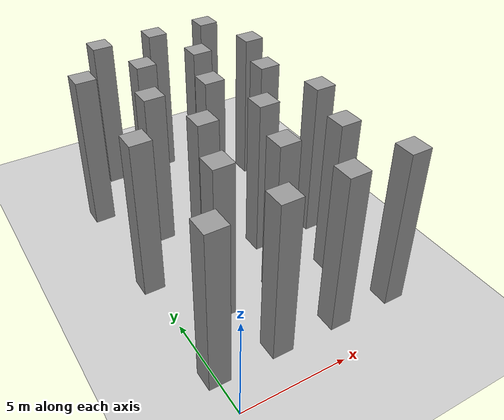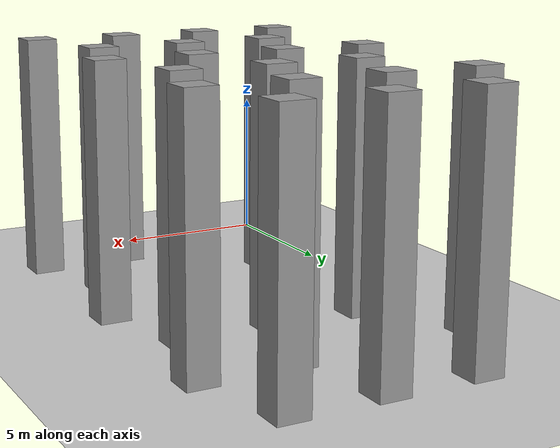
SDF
<sdf version="1.7">
 <world name="default">
  <model name="ground_plane">
   <static>1</static>
   <link name="link">
    <collision name="collision">
     <geometry><plane><normal>0 0 1</normal><size>100 100</size></plane></geometry>
     <surface>
      <contact><collide_bitmask>65535</collide_bitmask></contact>
      <friction><ode><mu>100</mu><mu2>50</mu2></ode></friction>
     </surface>
    </collision>
    <visual name="visual">
     <cast_shadows>0</cast_shadows>
     <geometry><plane><normal>0 0 1</normal><size>100 100</size></plane></geometry>
     <material>
      <script><uri>file://media/materials/scripts/gazebo.material</uri><name>Gazebo/Grey</name></script>
     </material>
    </visual>
   </link>
  </model>
  <model name="unit_box_static94">
   <link name="link">
    <inertial>
     <mass>1</mass>
     <inertia>
      <ixx>0.166667</ixx>
      <ixy>0</ixy>
      <ixz>0</ixz>
      <iyy>0.166667</iyy>
      <iyz>0</iyz>
      <izz>0.166667</izz>
     </inertia>
    </inertial>
    <visual name="visual">
     <geometry><box><size>1 1 8</size></box></geometry>
     <material>
      <script><name>Gazebo/Grey</name><uri>file://media/materials/scripts/gazebo.material</uri></script>
      <shader type="pixel"/>
     </material>
    </visual>
    <collision name="collision">
     <geometry><box><size>1 1 8</size></box></geometry>
     <surface>
      <friction>
       <ode><mu>1</mu><mu2>1</mu2><fdir1>0 0 0</fdir1><slip1>0</slip1><slip2>0</slip2></ode>
       <torsional>
        <coefficient>1</coefficient>
        <patch_radius>0</patch_radius>
        <surface_radius>0</surface_radius>
        <use_patch_radius>1</use_patch_radius>
        <ode><slip>0</slip></ode>
       </torsional>
      </friction>
      <bounce><restitution_coefficient>0</restitution_coefficient><threshold>1e+06</threshold></bounce>
      <contact>
       <collide_without_contact>0</collide_without_contact>
       <collide_without_contact_bitmask>1</collide_without_contact_bitmask>
       <collide_bitmask>1</collide_bitmask>
       <ode>
        <soft_cfm>0</soft_cfm>
        <soft_erp>0.2</soft_erp>
        <kp>1e+13</kp>
        <kd>1</kd>
        <max_vel>0.01</max_vel>
        <min_depth>0</min_depth>
       </ode>
       <bullet>
        <split_impulse>1</split_impulse>
        <split_impulse_penetration_threshold>-0.01</split_impulse_penetration_threshold>
        <soft_cfm>0</soft_cfm>
        <soft_erp>0.2</soft_erp>
        <kp>1e+13</kp>
        <kd>1</kd>
       </bullet>
      </contact>
     </surface>
    </collision>
   </link>
   <static>1</static>
   <pose>0 2 4 0 -0 0</pose>
  </model>
  <model name="unit_box_static95">
   <link name="link">
    <inertial>
     <mass>1</mass>
     <inertia>
      <ixx>0.166667</ixx>
      <ixy>0</ixy>
      <ixz>0</ixz>
      <iyy>0.166667</iyy>
      <iyz>0</iyz>
      <izz>0.166667</izz>
     </inertia>
    </inertial>
    <visual name="visual">
     <geometry><box><size>1 1 8</size></box></geometry>
     <material>
      <script><name>Gazebo/Grey</name><uri>file://media/materials/scripts/gazebo.material</uri></script>
      <shader type="pixel"/>
     </material>
    </visual>
    <collision name="collision">
     <geometry><box><size>1 1 8</size></box></geometry>
     <surface>
      <friction>
       <ode><mu>1</mu><mu2>1</mu2><fdir1>0 0 0</fdir1><slip1>0</slip1><slip2>0</slip2></ode>
       <torsional>
        <coefficient>1</coefficient>
        <patch_radius>0</patch_radius>
        <surface_radius>0</surface_radius>
        <use_patch_radius>1</use_patch_radius>
        <ode><slip>0</slip></ode>
       </torsional>
      </friction>
      <bounce><restitution_coefficient>0</restitution_coefficient><threshold>1e+06</threshold></bounce>
      <contact>
       <collide_without_contact>0</collide_without_contact>
       <collide_without_contact_bitmask>1</collide_without_contact_bitmask>
       <collide_bitmask>1</collide_bitmask>
       <ode>
        <soft_cfm>0</soft_cfm>
        <soft_erp>0.2</soft_erp>
        <kp>1e+13</kp>
        <kd>1</kd>
        <max_vel>0.01</max_vel>
        <min_depth>0</min_depth>
       </ode>
       <bullet>
        <split_impulse>1</split_impulse>
        <split_impulse_penetration_threshold>-0.01</split_impulse_penetration_threshold>
        <soft_cfm>0</soft_cfm>
        <soft_erp>0.2</soft_erp>
        <kp>1e+13</kp>
        <kd>1</kd>
       </bullet>
      </contact>
     </surface>
    </collision>
   </link>
   <static>1</static>
   <pose>3 2 4 0 -0 0</pose>
  </model>
  <model name="unit_box_static96">
   <link name="link">
    <inertial>
     <mass>1</mass>
     <inertia>
      <ixx>0.166667</ixx>
      <ixy>0</ixy>
      <ixz>0</ixz>
      <iyy>0.166667</iyy>
      <iyz>0</iyz>
      <izz>0.166667</izz>
     </inertia>
    </inertial>
    <visual name="visual">
     <geometry><box><size>1 1 8</size></box></geometry>
     <material>
      <script><name>Gazebo/Grey</name><uri>file://media/materials/scripts/gazebo.material</uri></script>
      <shader type="pixel"/>
     </material>
    </visual>
    <collision name="collision">
     <geometry><box><size>1 1 8</size></box></geometry>
     <surface>
      <friction>
       <ode><mu>1</mu><mu2>1</mu2><fdir1>0 0 0</fdir1><slip1>0</slip1><slip2>0</slip2></ode>
       <torsional>
        <coefficient>1</coefficient>
        <patch_radius>0</patch_radius>
        <surface_radius>0</surface_radius>
        <use_patch_radius>1</use_patch_radius>
        <ode><slip>0</slip></ode>
       </torsional>
      </friction>
      <bounce><restitution_coefficient>0</restitution_coefficient><threshold>1e+06</threshold></bounce>
      <contact>
       <collide_without_contact>0</collide_without_contact>
       <collide_without_contact_bitmask>1</collide_without_contact_bitmask>
       <collide_bitmask>1</collide_bitmask>
       <ode>
        <soft_cfm>0</soft_cfm>
        <soft_erp>0.2</soft_erp>
        <kp>1e+13</kp>
        <kd>1</kd>
        <max_vel>0.01</max_vel>
        <min_depth>0</min_depth>
       </ode>
       <bullet>
        <split_impulse>1</split_impulse>
        <split_impulse_penetration_threshold>-0.01</split_impulse_penetration_threshold>
        <soft_cfm>0</soft_cfm>
        <soft_erp>0.2</soft_erp>
        <kp>1e+13</kp>
        <kd>1</kd>
       </bullet>
      </contact>
     </surface>
    </collision>
   </link>
   <static>1</static>
   <pose>6 2 4 0 -0 0</pose>
  </model>
  <model name="unit_box_static97">
   <link name="link">
    <inertial>
     <mass>1</mass>
     <inertia>
      <ixx>0.166667</ixx>
      <ixy>0</ixy>
      <ixz>0</ixz>
      <iyy>0.166667</iyy>
      <iyz>0</iyz>
      <izz>0.166667</izz>
     </inertia>
    </inertial>
    <visual name="visual">
     <geometry><box><size>1 1 8</size></box></geometry>
     <material>
      <script><name>Gazebo/Grey</name><uri>file://media/materials/scripts/gazebo.material</uri></script>
      <shader type="pixel"/>
     </material>
    </visual>
    <collision name="collision">
     <geometry><box><size>1 1 8</size></box></geometry>
     <surface>
      <friction>
       <ode><mu>1</mu><mu2>1</mu2><fdir1>0 0 0</fdir1><slip1>0</slip1><slip2>0</slip2></ode>
       <torsional>
        <coefficient>1</coefficient>
        <patch_radius>0</patch_radius>
        <surface_radius>0</surface_radius>
        <use_patch_radius>1</use_patch_radius>
        <ode><slip>0</slip></ode>
       </torsional>
      </friction>
      <bounce><restitution_coefficient>0</restitution_coefficient><threshold>1e+06</threshold></bounce>
      <contact>
       <collide_without_contact>0</collide_without_contact>
       <collide_without_contact_bitmask>1</collide_without_contact_bitmask>
       <collide_bitmask>1</collide_bitmask>
       <ode>
        <soft_cfm>0</soft_cfm>
        <soft_erp>0.2</soft_erp>
        <kp>1e+13</kp>
        <kd>1</kd>
        <max_vel>0.01</max_vel>
        <min_depth>0</min_depth>
       </ode>
       <bullet>
        <split_impulse>1</split_impulse>
        <split_impulse_penetration_threshold>-0.01</split_impulse_penetration_threshold>
        <soft_cfm>0</soft_cfm>
        <soft_erp>0.2</soft_erp>
        <kp>1e+13</kp>
        <kd>1</kd>
       </bullet>
      </contact>
     </surface>
    </collision>
   </link>
   <static>1</static>
   <pose>9 2 4 0 -0 0</pose>
  </model>
  <model name="unit_box_static107">
   <link name="link">
    <inertial>
     <mass>1</mass>
     <inertia>
      <ixx>0.166667</ixx>
      <ixy>0</ixy>
      <ixz>0</ixz>
      <iyy>0.166667</iyy>
      <iyz>0</iyz>
      <izz>0.166667</izz>
     </inertia>
    </inertial>
    <visual name="visual">
     <geometry><box><size>1 1 8</size></box></geometry>
     <material>
      <script><name>Gazebo/Grey</name><uri>file://media/materials/scripts/gazebo.material</uri></script>
      <shader type="pixel"/>
     </material>
    </visual>
    <collision name="collision">
     <geometry><box><size>1 1 8</size></box></geometry>
     <surface>
      <friction>
       <ode><mu>1</mu><mu2>1</mu2><fdir1>0 0 0</fdir1><slip1>0</slip1><slip2>0</slip2></ode>
       <torsional>
        <coefficient>1</coefficient>
        <patch_radius>0</patch_radius>
        <surface_radius>0</surface_radius>
        <use_patch_radius>1</use_patch_radius>
        <ode><slip>0</slip></ode>
       </torsional>
      </friction>
      <bounce><restitution_coefficient>0</restitution_coefficient><threshold>1e+06</threshold></bounce>
      <contact>
       <collide_without_contact>0</collide_without_contact>
       <collide_without_contact_bitmask>1</collide_without_contact_bitmask>
       <collide_bitmask>1</collide_bitmask>
       <ode>
        <soft_cfm>0</soft_cfm>
        <soft_erp>0.2</soft_erp>
        <kp>1e+13</kp>
        <kd>1</kd>
        <max_vel>0.01</max_vel>
        <min_depth>0</min_depth>
       </ode>
       <bullet>
        <split_impulse>1</split_impulse>
        <split_impulse_penetration_threshold>-0.01</split_impulse_penetration_threshold>
        <soft_cfm>0</soft_cfm>
        <soft_erp>0.2</soft_erp>
        <kp>1e+13</kp>
        <kd>1</kd>
       </bullet>
      </contact>
     </surface>
    </collision>
   </link>
   <static>1</static>
   <pose>2 5 4 0 -0 0</pose>
  </model>
  <model name="unit_box_static108">
   <link name="link">
    <inertial>
     <mass>1</mass>
     <inertia>
      <ixx>0.166667</ixx>
      <ixy>0</ixy>
      <ixz>0</ixz>
      <iyy>0.166667</iyy>
      <iyz>0</iyz>
      <izz>0.166667</izz>
     </inertia>
    </inertial>
    <visual name="visual">
     <geometry><box><size>1 1 8</size></box></geometry>
     <material>
      <script><name>Gazebo/Grey</name><uri>file://media/materials/scripts/gazebo.material</uri></script>
      <shader type="pixel"/>
     </material>
    </visual>
    <collision name="collision">
     <geometry><box><size>1 1 8</size></box></geometry>
     <surface>
      <friction>
       <ode><mu>1</mu><mu2>1</mu2><fdir1>0 0 0</fdir1><slip1>0</slip1><slip2>0</slip2></ode>
       <torsional>
        <coefficient>1</coefficient>
        <patch_radius>0</patch_radius>
        <surface_radius>0</surface_radius>
        <use_patch_radius>1</use_patch_radius>
        <ode><slip>0</slip></ode>
       </torsional>
      </friction>
      <bounce><restitution_coefficient>0</restitution_coefficient><threshold>1e+06</threshold></bounce>
      <contact>
       <collide_without_contact>0</collide_without_contact>
       <collide_without_contact_bitmask>1</collide_without_contact_bitmask>
       <collide_bitmask>1</collide_bitmask>
       <ode>
        <soft_cfm>0</soft_cfm>
        <soft_erp>0.2</soft_erp>
        <kp>1e+13</kp>
        <kd>1</kd>
        <max_vel>0.01</max_vel>
        <min_depth>0</min_depth>
       </ode>
       <bullet>
        <split_impulse>1</split_impulse>
        <split_impulse_penetration_threshold>-0.01</split_impulse_penetration_threshold>
        <soft_cfm>0</soft_cfm>
        <soft_erp>0.2</soft_erp>
        <kp>1e+13</kp>
        <kd>1</kd>
       </bullet>
      </contact>
     </surface>
    </collision>
   </link>
   <static>1</static>
   <pose>5 5 4 0 -0 0</pose>
  </model>
  <model name="unit_box_static109">
   <link name="link">
    <inertial>
     <mass>1</mass>
     <inertia>
      <ixx>0.166667</ixx>
      <ixy>0</ixy>
      <ixz>0</ixz>
      <iyy>0.166667</iyy>
      <iyz>0</iyz>
      <izz>0.166667</izz>
     </inertia>
    </inertial>
    <visual name="visual">
     <geometry><box><size>1 1 8</size></box></geometry>
     <material>
      <script><name>Gazebo/Grey</name><uri>file://media/materials/scripts/gazebo.material</uri></script>
      <shader type="pixel"/>
     </material>
    </visual>
    <collision name="collision">
     <geometry><box><size>1 1 8</size></box></geometry>
     <surface>
      <friction>
       <ode><mu>1</mu><mu2>1</mu2><fdir1>0 0 0</fdir1><slip1>0</slip1><slip2>0</slip2></ode>
       <torsional>
        <coefficient>1</coefficient>
        <patch_radius>0</patch_radius>
        <surface_radius>0</surface_radius>
        <use_patch_radius>1</use_patch_radius>
        <ode><slip>0</slip></ode>
       </torsional>
      </friction>
      <bounce><restitution_coefficient>0</restitution_coefficient><threshold>1e+06</threshold></bounce>
      <contact>
       <collide_without_contact>0</collide_without_contact>
       <collide_without_contact_bitmask>1</collide_without_contact_bitmask>
       <collide_bitmask>1</collide_bitmask>
       <ode>
        <soft_cfm>0</soft_cfm>
        <soft_erp>0.2</soft_erp>
        <kp>1e+13</kp>
        <kd>1</kd>
        <max_vel>0.01</max_vel>
        <min_depth>0</min_depth>
       </ode>
       <bullet>
        <split_impulse>1</split_impulse>
        <split_impulse_penetration_threshold>-0.01</split_impulse_penetration_threshold>
        <soft_cfm>0</soft_cfm>
        <soft_erp>0.2</soft_erp>
        <kp>1e+13</kp>
        <kd>1</kd>
       </bullet>
      </contact>
     </surface>
    </collision>
   </link>
   <static>1</static>
   <pose>8 5 4 0 -0 0</pose>
  </model>
  <model name="unit_box_static119">
   <link name="link">
    <inertial>
     <mass>1</mass>
     <inertia>
      <ixx>0.166667</ixx>
      <ixy>0</ixy>
      <ixz>0</ixz>
      <iyy>0.166667</iyy>
      <iyz>0</iyz>
      <izz>0.166667</izz>
     </inertia>
    </inertial>
    <visual name="visual">
     <geometry><box><size>1 1 8</size></box></geometry>
     <material>
      <script><name>Gazebo/Grey</name><uri>file://media/materials/scripts/gazebo.material</uri></script>
      <shader type="pixel"/>
     </material>
    </visual>
    <collision name="collision">
     <geometry><box><size>1 1 8</size></box></geometry>
     <surface>
      <friction>
       <ode><mu>1</mu><mu2>1</mu2><fdir1>0 0 0</fdir1><slip1>0</slip1><slip2>0</slip2></ode>
       <torsional>
        <coefficient>1</coefficient>
        <patch_radius>0</patch_radius>
        <surface_radius>0</surface_radius>
        <use_patch_radius>1</use_patch_radius>
        <ode><slip>0</slip></ode>
       </torsional>
      </friction>
      <bounce><restitution_coefficient>0</restitution_coefficient><threshold>1e+06</threshold></bounce>
      <contact>
       <collide_without_contact>0</collide_without_contact>
       <collide_without_contact_bitmask>1</collide_without_contact_bitmask>
       <collide_bitmask>1</collide_bitmask>
       <ode>
        <soft_cfm>0</soft_cfm>
        <soft_erp>0.2</soft_erp>
        <kp>1e+13</kp>
        <kd>1</kd>
        <max_vel>0.01</max_vel>
        <min_depth>0</min_depth>
       </ode>
       <bullet>
        <split_impulse>1</split_impulse>
        <split_impulse_penetration_threshold>-0.01</split_impulse_penetration_threshold>
        <soft_cfm>0</soft_cfm>
        <soft_erp>0.2</soft_erp>
        <kp>1e+13</kp>
        <kd>1</kd>
       </bullet>
      </contact>
     </surface>
    </collision>
   </link>
   <static>1</static>
   <pose>0 8 4 0 -0 0</pose>
  </model>
  <model name="unit_box_static120">
   <link name="link">
    <inertial>
     <mass>1</mass>
     <inertia>
      <ixx>0.166667</ixx>
      <ixy>0</ixy>
      <ixz>0</ixz>
      <iyy>0.166667</iyy>
      <iyz>0</iyz>
      <izz>0.166667</izz>
     </inertia>
    </inertial>
    <visual name="visual">
     <geometry><box><size>1 1 8</size></box></geometry>
     <material>
      <script><name>Gazebo/Grey</name><uri>file://media/materials/scripts/gazebo.material</uri></script>
      <shader type="pixel"/>
     </material>
    </visual>
    <collision name="collision">
     <geometry><box><size>1 1 8</size></box></geometry>
     <surface>
      <friction>
       <ode><mu>1</mu><mu2>1</mu2><fdir1>0 0 0</fdir1><slip1>0</slip1><slip2>0</slip2></ode>
       <torsional>
        <coefficient>1</coefficient>
        <patch_radius>0</patch_radius>
        <surface_radius>0</surface_radius>
        <use_patch_radius>1</use_patch_radius>
        <ode><slip>0</slip></ode>
       </torsional>
      </friction>
      <bounce><restitution_coefficient>0</restitution_coefficient><threshold>1e+06</threshold></bounce>
      <contact>
       <collide_without_contact>0</collide_without_contact>
       <collide_without_contact_bitmask>1</collide_without_contact_bitmask>
       <collide_bitmask>1</collide_bitmask>
       <ode>
        <soft_cfm>0</soft_cfm>
        <soft_erp>0.2</soft_erp>
        <kp>1e+13</kp>
        <kd>1</kd>
        <max_vel>0.01</max_vel>
        <min_depth>0</min_depth>
       </ode>
       <bullet>
        <split_impulse>1</split_impulse>
        <split_impulse_penetration_threshold>-0.01</split_impulse_penetration_threshold>
        <soft_cfm>0</soft_cfm>
        <soft_erp>0.2</soft_erp>
        <kp>1e+13</kp>
        <kd>1</kd>
       </bullet>
      </contact>
     </surface>
    </collision>
   </link>
   <static>1</static>
   <pose>3 8 4 0 -0 0</pose>
  </model>
  <model name="unit_box_static121">
   <link name="link">
    <inertial>
     <mass>1</mass>
     <inertia>
      <ixx>0.166667</ixx>
      <ixy>0</ixy>
      <ixz>0</ixz>
      <iyy>0.166667</iyy>
      <iyz>0</iyz>
      <izz>0.166667</izz>
     </inertia>
    </inertial>
    <visual name="visual">
     <geometry><box><size>1 1 8</size></box></geometry>
     <material>
      <script><name>Gazebo/Grey</name><uri>file://media/materials/scripts/gazebo.material</uri></script>
      <shader type="pixel"/>
     </material>
    </visual>
    <collision name="collision">
     <geometry><box><size>1 1 8</size></box></geometry>
     <surface>
      <friction>
       <ode><mu>1</mu><mu2>1</mu2><fdir1>0 0 0</fdir1><slip1>0</slip1><slip2>0</slip2></ode>
       <torsional>
        <coefficient>1</coefficient>
        <patch_radius>0</patch_radius>
        <surface_radius>0</surface_radius>
        <use_patch_radius>1</use_patch_radius>
        <ode><slip>0</slip></ode>
       </torsional>
      </friction>
      <bounce><restitution_coefficient>0</restitution_coefficient><threshold>1e+06</threshold></bounce>
      <contact>
       <collide_without_contact>0</collide_without_contact>
       <collide_without_contact_bitmask>1</collide_without_contact_bitmask>
       <collide_bitmask>1</collide_bitmask>
       <ode>
        <soft_cfm>0</soft_cfm>
        <soft_erp>0.2</soft_erp>
        <kp>1e+13</kp>
        <kd>1</kd>
        <max_vel>0.01</max_vel>
        <min_depth>0</min_depth>
       </ode>
       <bullet>
        <split_impulse>1</split_impulse>
        <split_impulse_penetration_threshold>-0.01</split_impulse_penetration_threshold>
        <soft_cfm>0</soft_cfm>
        <soft_erp>0.2</soft_erp>
        <kp>1e+13</kp>
        <kd>1</kd>
       </bullet>
      </contact>
     </surface>
    </collision>
   </link>
   <static>1</static>
   <pose>6 8 4 0 -0 0</pose>
  </model>
  <model name="unit_box_static122">
   <link name="link">
    <inertial>
     <mass>1</mass>
     <inertia>
      <ixx>0.166667</ixx>
      <ixy>0</ixy>
      <ixz>0</ixz>
      <iyy>0.166667</iyy>
      <iyz>0</iyz>
      <izz>0.166667</izz>
     </inertia>
    </inertial>
    <visual name="visual">
     <geometry><box><size>1 1 8</size></box></geometry>
     <material>
      <script><name>Gazebo/Grey</name><uri>file://media/materials/scripts/gazebo.material</uri></script>
      <shader type="pixel"/>
     </material>
    </visual>
    <collision name="collision">
     <geometry><box><size>1 1 8</size></box></geometry>
     <surface>
      <friction>
       <ode><mu>1</mu><mu2>1</mu2><fdir1>0 0 0</fdir1><slip1>0</slip1><slip2>0</slip2></ode>
       <torsional>
        <coefficient>1</coefficient>
        <patch_radius>0</patch_radius>
        <surface_radius>0</surface_radius>
        <use_patch_radius>1</use_patch_radius>
        <ode><slip>0</slip></ode>
       </torsional>
      </friction>
      <bounce><restitution_coefficient>0</restitution_coefficient><threshold>1e+06</threshold></bounce>
      <contact>
       <collide_without_contact>0</collide_without_contact>
       <collide_without_contact_bitmask>1</collide_without_contact_bitmask>
       <collide_bitmask>1</collide_bitmask>
       <ode>
        <soft_cfm>0</soft_cfm>
        <soft_erp>0.2</soft_erp>
        <kp>1e+13</kp>
        <kd>1</kd>
        <max_vel>0.01</max_vel>
        <min_depth>0</min_depth>
       </ode>
       <bullet>
        <split_impulse>1</split_impulse>
        <split_impulse_penetration_threshold>-0.01</split_impulse_penetration_threshold>
        <soft_cfm>0</soft_cfm>
        <soft_erp>0.2</soft_erp>
        <kp>1e+13</kp>
        <kd>1</kd>
       </bullet>
      </contact>
     </surface>
    </collision>
   </link>
   <static>1</static>
   <pose>9 8 4 0 -0 0</pose>
  </model>
  <model name="unit_box_static132">
   <link name="link">
    <inertial>
     <mass>1</mass>
     <inertia>
      <ixx>0.166667</ixx>
      <ixy>0</ixy>
      <ixz>0</ixz>
      <iyy>0.166667</iyy>
      <iyz>0</iyz>
      <izz>0.166667</izz>
     </inertia>
    </inertial>
    <visual name="visual">
     <geometry><box><size>1 1 8</size></box></geometry>
     <material>
      <script><name>Gazebo/Grey</name><uri>file://media/materials/scripts/gazebo.material</uri></script>
      <shader type="pixel"/>
     </material>
    </visual>
    <collision name="collision">
     <geometry><box><size>1 1 8</size></box></geometry>
     <surface>
      <friction>
       <ode><mu>1</mu><mu2>1</mu2><fdir1>0 0 0</fdir1><slip1>0</slip1><slip2>0</slip2></ode>
       <torsional>
        <coefficient>1</coefficient>
        <patch_radius>0</patch_radius>
        <surface_radius>0</surface_radius>
        <use_patch_radius>1</use_patch_radius>
        <ode><slip>0</slip></ode>
       </torsional>
      </friction>
      <bounce><restitution_coefficient>0</restitution_coefficient><threshold>1e+06</threshold></bounce>
      <contact>
       <collide_without_contact>0</collide_without_contact>
       <collide_without_contact_bitmask>1</collide_without_contact_bitmask>
       <collide_bitmask>1</collide_bitmask>
       <ode>
        <soft_cfm>0</soft_cfm>
        <soft_erp>0.2</soft_erp>
        <kp>1e+13</kp>
        <kd>1</kd>
        <max_vel>0.01</max_vel>
        <min_depth>0</min_depth>
       </ode>
       <bullet>
        <split_impulse>1</split_impulse>
        <split_impulse_penetration_threshold>-0.01</split_impulse_penetration_threshold>
        <soft_cfm>0</soft_cfm>
        <soft_erp>0.2</soft_erp>
        <kp>1e+13</kp>
        <kd>1</kd>
       </bullet>
      </contact>
     </surface>
    </collision>
   </link>
   <static>1</static>
   <pose>2 11 4 0 -0 0</pose>
  </model>
  <model name="unit_box_static133">
   <link name="link">
    <inertial>
     <mass>1</mass>
     <inertia>
      <ixx>0.166667</ixx>
      <ixy>0</ixy>
      <ixz>0</ixz>
      <iyy>0.166667</iyy>
      <iyz>0</iyz>
      <izz>0.166667</izz>
     </inertia>
    </inertial>
    <visual name="visual">
     <geometry><box><size>1 1 8</size></box></geometry>
     <material>
      <script><name>Gazebo/Grey</name><uri>file://media/materials/scripts/gazebo.material</uri></script>
      <shader type="pixel"/>
     </material>
    </visual>
    <collision name="collision">
     <geometry><box><size>1 1 8</size></box></geometry>
     <surface>
      <friction>
       <ode><mu>1</mu><mu2>1</mu2><fdir1>0 0 0</fdir1><slip1>0</slip1><slip2>0</slip2></ode>
       <torsional>
        <coefficient>1</coefficient>
        <patch_radius>0</patch_radius>
        <surface_radius>0</surface_radius>
        <use_patch_radius>1</use_patch_radius>
        <ode><slip>0</slip></ode>
       </torsional>
      </friction>
      <bounce><restitution_coefficient>0</restitution_coefficient><threshold>1e+06</threshold></bounce>
      <contact>
       <collide_without_contact>0</collide_without_contact>
       <collide_without_contact_bitmask>1</collide_without_contact_bitmask>
       <collide_bitmask>1</collide_bitmask>
       <ode>
        <soft_cfm>0</soft_cfm>
        <soft_erp>0.2</soft_erp>
        <kp>1e+13</kp>
        <kd>1</kd>
        <max_vel>0.01</max_vel>
        <min_depth>0</min_depth>
       </ode>
       <bullet>
        <split_impulse>1</split_impulse>
        <split_impulse_penetration_threshold>-0.01</split_impulse_penetration_threshold>
        <soft_cfm>0</soft_cfm>
        <soft_erp>0.2</soft_erp>
        <kp>1e+13</kp>
        <kd>1</kd>
       </bullet>
      </contact>
     </surface>
    </collision>
   </link>
   <static>1</static>
   <pose>5 11 4 0 -0 0</pose>
  </model>
  <model name="unit_box_static134">
   <link name="link">
    <inertial>
     <mass>1</mass>
     <inertia>
      <ixx>0.166667</ixx>
      <ixy>0</ixy>
      <ixz>0</ixz>
      <iyy>0.166667</iyy>
      <iyz>0</iyz>
      <izz>0.166667</izz>
     </inertia>
    </inertial>
    <visual name="visual">
     <geometry><box><size>1 1 8</size></box></geometry>
     <material>
      <script><name>Gazebo/Grey</name><uri>file://media/materials/scripts/gazebo.material</uri></script>
      <shader type="pixel"/>
     </material>
    </visual>
    <collision name="collision">
     <geometry><box><size>1 1 8</size></box></geometry>
     <surface>
      <friction>
       <ode><mu>1</mu><mu2>1</mu2><fdir1>0 0 0</fdir1><slip1>0</slip1><slip2>0</slip2></ode>
       <torsional>
        <coefficient>1</coefficient>
        <patch_radius>0</patch_radius>
        <surface_radius>0</surface_radius>
        <use_patch_radius>1</use_patch_radius>
        <ode><slip>0</slip></ode>
       </torsional>
      </friction>
      <bounce><restitution_coefficient>0</restitution_coefficient><threshold>1e+06</threshold></bounce>
      <contact>
       <collide_without_contact>0</collide_without_contact>
       <collide_without_contact_bitmask>1</collide_without_contact_bitmask>
       <collide_bitmask>1</collide_bitmask>
       <ode>
        <soft_cfm>0</soft_cfm>
        <soft_erp>0.2</soft_erp>
        <kp>1e+13</kp>
        <kd>1</kd>
        <max_vel>0.01</max_vel>
        <min_depth>0</min_depth>
       </ode>
       <bullet>
        <split_impulse>1</split_impulse>
        <split_impulse_penetration_threshold>-0.01</split_impulse_penetration_threshold>
        <soft_cfm>0</soft_cfm>
        <soft_erp>0.2</soft_erp>
        <kp>1e+13</kp>
        <kd>1</kd>
       </bullet>
      </contact>
     </surface>
    </collision>
   </link>
   <static>1</static>
   <pose>8 11 4 0 -0 0</pose>
  </model>
  <model name="unit_box_static144">
   <link name="link">
    <inertial>
     <mass>1</mass>
     <inertia>
      <ixx>0.166667</ixx>
      <ixy>0</ixy>
      <ixz>0</ixz>
      <iyy>0.166667</iyy>
      <iyz>0</iyz>
      <izz>0.166667</izz>
     </inertia>
    </inertial>
    <visual name="visual">
     <geometry><box><size>1 1 8</size></box></geometry>
     <material>
      <script><name>Gazebo/Grey</name><uri>file://media/materials/scripts/gazebo.material</uri></script>
      <shader type="pixel"/>
     </material>
    </visual>
    <collision name="collision">
     <geometry><box><size>1 1 8</size></box></geometry>
     <surface>
      <friction>
       <ode><mu>1</mu><mu2>1</mu2><fdir1>0 0 0</fdir1><slip1>0</slip1><slip2>0</slip2></ode>
       <torsional>
        <coefficient>1</coefficient>
        <patch_radius>0</patch_radius>
        <surface_radius>0</surface_radius>
        <use_patch_radius>1</use_patch_radius>
        <ode><slip>0</slip></ode>
       </torsional>
      </friction>
      <bounce><restitution_coefficient>0</restitution_coefficient><threshold>1e+06</threshold></bounce>
      <contact>
       <collide_without_contact>0</collide_without_contact>
       <collide_without_contact_bitmask>1</collide_without_contact_bitmask>
       <collide_bitmask>1</collide_bitmask>
       <ode>
        <soft_cfm>0</soft_cfm>
        <soft_erp>0.2</soft_erp>
        <kp>1e+13</kp>
        <kd>1</kd>
        <max_vel>0.01</max_vel>
        <min_depth>0</min_depth>
       </ode>
       <bullet>
        <split_impulse>1</split_impulse>
        <split_impulse_penetration_threshold>-0.01</split_impulse_penetration_threshold>
        <soft_cfm>0</soft_cfm>
        <soft_erp>0.2</soft_erp>
        <kp>1e+13</kp>
        <kd>1</kd>
       </bullet>
      </contact>
     </surface>
    </collision>
   </link>
   <static>1</static>
   <pose>0 14 4 0 -0 0</pose>
  </model>
  <model name="unit_box_static145">
   <link name="link">
    <inertial>
     <mass>1</mass>
     <inertia>
      <ixx>0.166667</ixx>
      <ixy>0</ixy>
      <ixz>0</ixz>
      <iyy>0.166667</iyy>
      <iyz>0</iyz>
      <izz>0.166667</izz>
     </inertia>
    </inertial>
    <visual name="visual">
     <geometry><box><size>1 1 8</size></box></geometry>
     <material>
      <script><name>Gazebo/Grey</name><uri>file://media/materials/scripts/gazebo.material</uri></script>
      <shader type="pixel"/>
     </material>
    </visual>
    <collision name="collision">
     <geometry><box><size>1 1 8</size></box></geometry>
     <surface>
      <friction>
       <ode><mu>1</mu><mu2>1</mu2><fdir1>0 0 0</fdir1><slip1>0</slip1><slip2>0</slip2></ode>
       <torsional>
        <coefficient>1</coefficient>
        <patch_radius>0</patch_radius>
        <surface_radius>0</surface_radius>
        <use_patch_radius>1</use_patch_radius>
        <ode><slip>0</slip></ode>
       </torsional>
      </friction>
      <bounce><restitution_coefficient>0</restitution_coefficient><threshold>1e+06</threshold></bounce>
      <contact>
       <collide_without_contact>0</collide_without_contact>
       <collide_without_contact_bitmask>1</collide_without_contact_bitmask>
       <collide_bitmask>1</collide_bitmask>
       <ode>
        <soft_cfm>0</soft_cfm>
        <soft_erp>0.2</soft_erp>
        <kp>1e+13</kp>
        <kd>1</kd>
        <max_vel>0.01</max_vel>
        <min_depth>0</min_depth>
       </ode>
       <bullet>
        <split_impulse>1</split_impulse>
        <split_impulse_penetration_threshold>-0.01</split_impulse_penetration_threshold>
        <soft_cfm>0</soft_cfm>
        <soft_erp>0.2</soft_erp>
        <kp>1e+13</kp>
        <kd>1</kd>
       </bullet>
      </contact>
     </surface>
    </collision>
   </link>
   <static>1</static>
   <pose>3 14 4 0 -0 0</pose>
  </model>
  <model name="unit_box_static146">
   <link name="link">
    <inertial>
     <mass>1</mass>
     <inertia>
      <ixx>0.166667</ixx>
      <ixy>0</ixy>
      <ixz>0</ixz>
      <iyy>0.166667</iyy>
      <iyz>0</iyz>
      <izz>0.166667</izz>
     </inertia>
    </inertial>
    <visual name="visual">
     <geometry><box><size>1 1 8</size></box></geometry>
     <material>
      <script><name>Gazebo/Grey</name><uri>file://media/materials/scripts/gazebo.material</uri></script>
      <shader type="pixel"/>
     </material>
    </visual>
    <collision name="collision">
     <geometry><box><size>1 1 8</size></box></geometry>
     <surface>
      <friction>
       <ode><mu>1</mu><mu2>1</mu2><fdir1>0 0 0</fdir1><slip1>0</slip1><slip2>0</slip2></ode>
       <torsional>
        <coefficient>1</coefficient>
        <patch_radius>0</patch_radius>
        <surface_radius>0</surface_radius>
        <use_patch_radius>1</use_patch_radius>
        <ode><slip>0</slip></ode>
       </torsional>
      </friction>
      <bounce><restitution_coefficient>0</restitution_coefficient><threshold>1e+06</threshold></bounce>
      <contact>
       <collide_without_contact>0</collide_without_contact>
       <collide_without_contact_bitmask>1</collide_without_contact_bitmask>
       <collide_bitmask>1</collide_bitmask>
       <ode>
        <soft_cfm>0</soft_cfm>
        <soft_erp>0.2</soft_erp>
        <kp>1e+13</kp>
        <kd>1</kd>
        <max_vel>0.01</max_vel>
        <min_depth>0</min_depth>
       </ode>
       <bullet>
        <split_impulse>1</split_impulse>
        <split_impulse_penetration_threshold>-0.01</split_impulse_penetration_threshold>
        <soft_cfm>0</soft_cfm>
        <soft_erp>0.2</soft_erp>
        <kp>1e+13</kp>
        <kd>1</kd>
       </bullet>
      </contact>
     </surface>
    </collision>
   </link>
   <static>1</static>
   <pose>6 14 4 0 -0 0</pose>
  </model>
  <model name="unit_box_static147">
   <link name="link">
    <inertial>
     <mass>1</mass>
     <inertia>
      <ixx>0.166667</ixx>
      <ixy>0</ixy>
      <ixz>0</ixz>
      <iyy>0.166667</iyy>
      <iyz>0</iyz>
      <izz>0.166667</izz>
     </inertia>
    </inertial>
    <visual name="visual">
     <geometry><box><size>1 1 8</size></box></geometry>
     <material>
      <script><name>Gazebo/Grey</name><uri>file://media/materials/scripts/gazebo.material</uri></script>
      <shader type="pixel"/>
     </material>
    </visual>
    <collision name="collision">
     <geometry><box><size>1 1 8</size></box></geometry>
     <surface>
      <friction>
       <ode><mu>1</mu><mu2>1</mu2><fdir1>0 0 0</fdir1><slip1>0</slip1><slip2>0</slip2></ode>
       <torsional>
        <coefficient>1</coefficient>
        <patch_radius>0</patch_radius>
        <surface_radius>0</surface_radius>
        <use_patch_radius>1</use_patch_radius>
        <ode><slip>0</slip></ode>
       </torsional>
      </friction>
      <bounce><restitution_coefficient>0</restitution_coefficient><threshold>1e+06</threshold></bounce>
      <contact>
       <collide_without_contact>0</collide_without_contact>
       <collide_without_contact_bitmask>1</collide_without_contact_bitmask>
       <collide_bitmask>1</collide_bitmask>
       <ode>
        <soft_cfm>0</soft_cfm>
        <soft_erp>0.2</soft_erp>
        <kp>1e+13</kp>
        <kd>1</kd>
        <max_vel>0.01</max_vel>
        <min_depth>0</min_depth>
       </ode>
       <bullet>
        <split_impulse>1</split_impulse>
        <split_impulse_penetration_threshold>-0.01</split_impulse_penetration_threshold>
        <soft_cfm>0</soft_cfm>
        <soft_erp>0.2</soft_erp>
        <kp>1e+13</kp>
        <kd>1</kd>
       </bullet>
      </contact>
     </surface>
    </collision>
   </link>
   <static>1</static>
   <pose>9 14 4 0 -0 0</pose>
  </model>
  <model name="unit_box_static157">
   <link name="link">
    <inertial>
     <mass>1</mass>
     <inertia>
      <ixx>0.166667</ixx>
      <ixy>0</ixy>
      <ixz>0</ixz>
      <iyy>0.166667</iyy>
      <iyz>0</iyz>
      <izz>0.166667</izz>
     </inertia>
    </inertial>
    <visual name="visual">
     <geometry><box><size>1 1 8</size></box></geometry>
     <material>
      <script><name>Gazebo/Grey</name><uri>file://media/materials/scripts/gazebo.material</uri></script>
      <shader type="pixel"/>
     </material>
    </visual>
    <collision name="collision">
     <geometry><box><size>1 1 8</size></box></geometry>
     <surface>
      <friction>
       <ode><mu>1</mu><mu2>1</mu2><fdir1>0 0 0</fdir1><slip1>0</slip1><slip2>0</slip2></ode>
       <torsional>
        <coefficient>1</coefficient>
        <patch_radius>0</patch_radius>
        <surface_radius>0</surface_radius>
        <use_patch_radius>1</use_patch_radius>
        <ode><slip>0</slip></ode>
       </torsional>
      </friction>
      <bounce><restitution_coefficient>0</restitution_coefficient><threshold>1e+06</threshold></bounce>
      <contact>
       <collide_without_contact>0</collide_without_contact>
       <collide_without_contact_bitmask>1</collide_without_contact_bitmask>
       <collide_bitmask>1</collide_bitmask>
       <ode>
        <soft_cfm>0</soft_cfm>
        <soft_erp>0.2</soft_erp>
        <kp>1e+13</kp>
        <kd>1</kd>
        <max_vel>0.01</max_vel>
        <min_depth>0</min_depth>
       </ode>
       <bullet>
        <split_impulse>1</split_impulse>
        <split_impulse_penetration_threshold>-0.01</split_impulse_penetration_threshold>
        <soft_cfm>0</soft_cfm>
        <soft_erp>0.2</soft_erp>
        <kp>1e+13</kp>
        <kd>1</kd>
       </bullet>
      </contact>
     </surface>
    </collision>
   </link>
   <static>1</static>
   <pose>2 17 4 0 -0 0</pose>
  </model>
  <model name="unit_box_static158">
   <link name="link">
    <inertial>
     <mass>1</mass>
     <inertia>
      <ixx>0.166667</ixx>
      <ixy>0</ixy>
      <ixz>0</ixz>
      <iyy>0.166667</iyy>
      <iyz>0</iyz>
      <izz>0.166667</izz>
     </inertia>
    </inertial>
    <visual name="visual">
     <geometry><box><size>1 1 8</size></box></geometry>
     <material>
      <script><name>Gazebo/Grey</name><uri>file://media/materials/scripts/gazebo.material</uri></script>
      <shader type="pixel"/>
     </material>
    </visual>
    <collision name="collision">
     <geometry><box><size>1 1 8</size></box></geometry>
     <surface>
      <friction>
       <ode><mu>1</mu><mu2>1</mu2><fdir1>0 0 0</fdir1><slip1>0</slip1><slip2>0</slip2></ode>
       <torsional>
        <coefficient>1</coefficient>
        <patch_radius>0</patch_radius>
        <surface_radius>0</surface_radius>
        <use_patch_radius>1</use_patch_radius>
        <ode><slip>0</slip></ode>
       </torsional>
      </friction>
      <bounce><restitution_coefficient>0</restitution_coefficient><threshold>1e+06</threshold></bounce>
      <contact>
       <collide_without_contact>0</collide_without_contact>
       <collide_without_contact_bitmask>1</collide_without_contact_bitmask>
       <collide_bitmask>1</collide_bitmask>
       <ode>
        <soft_cfm>0</soft_cfm>
        <soft_erp>0.2</soft_erp>
        <kp>1e+13</kp>
        <kd>1</kd>
        <max_vel>0.01</max_vel>
        <min_depth>0</min_depth>
       </ode>
       <bullet>
        <split_impulse>1</split_impulse>
        <split_impulse_penetration_threshold>-0.01</split_impulse_penetration_threshold>
        <soft_cfm>0</soft_cfm>
        <soft_erp>0.2</soft_erp>
        <kp>1e+13</kp>
        <kd>1</kd>
       </bullet>
      </contact>
     </surface>
    </collision>
   </link>
   <static>1</static>
   <pose>5 17 4 0 -0 0</pose>
  </model>
  <model name="unit_box_static159">
   <link name="link">
    <inertial>
     <mass>1</mass>
     <inertia>
      <ixx>0.166667</ixx>
      <ixy>0</ixy>
      <ixz>0</ixz>
      <iyy>0.166667</iyy>
      <iyz>0</iyz>
      <izz>0.166667</izz>
     </inertia>
    </inertial>
    <visual name="visual">
     <geometry><box><size>1 1 8</size></box></geometry>
     <material>
      <script><name>Gazebo/Grey</name><uri>file://media/materials/scripts/gazebo.material</uri></script>
      <shader type="pixel"/>
     </material>
    </visual>
    <collision name="collision">
     <geometry><box><size>1 1 8</size></box></geometry>
     <surface>
      <friction>
       <ode><mu>1</mu><mu2>1</mu2><fdir1>0 0 0</fdir1><slip1>0</slip1><slip2>0</slip2></ode>
       <torsional>
        <coefficient>1</coefficient>
        <patch_radius>0</patch_radius>
        <surface_radius>0</surface_radius>
        <use_patch_radius>1</use_patch_radius>
        <ode><slip>0</slip></ode>
       </torsional>
      </friction>
      <bounce><restitution_coefficient>0</restitution_coefficient><threshold>1e+06</threshold></bounce>
      <contact>
       <collide_without_contact>0</collide_without_contact>
       <collide_without_contact_bitmask>1</collide_without_contact_bitmask>
       <collide_bitmask>1</collide_bitmask>
       <ode>
        <soft_cfm>0</soft_cfm>
        <soft_erp>0.2</soft_erp>
        <kp>1e+13</kp>
        <kd>1</kd>
        <max_vel>0.01</max_vel>
        <min_depth>0</min_depth>
       </ode>
       <bullet>
        <split_impulse>1</split_impulse>
        <split_impulse_penetration_threshold>-0.01</split_impulse_penetration_threshold>
        <soft_cfm>0</soft_cfm>
        <soft_erp>0.2</soft_erp>
        <kp>1e+13</kp>
        <kd>1</kd>
       </bullet>
      </contact>
     </surface>
    </collision>
   </link>
   <static>1</static>
   <pose>8 17 4 0 -0 0</pose>
  </model>
 </world>
</sdf>
